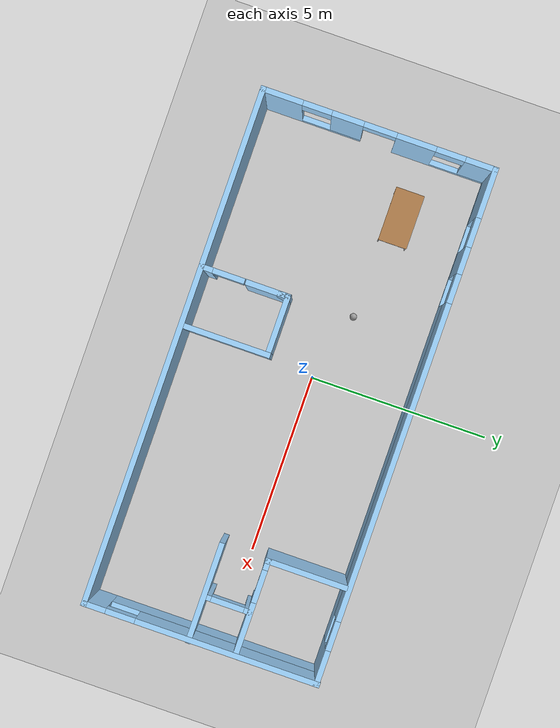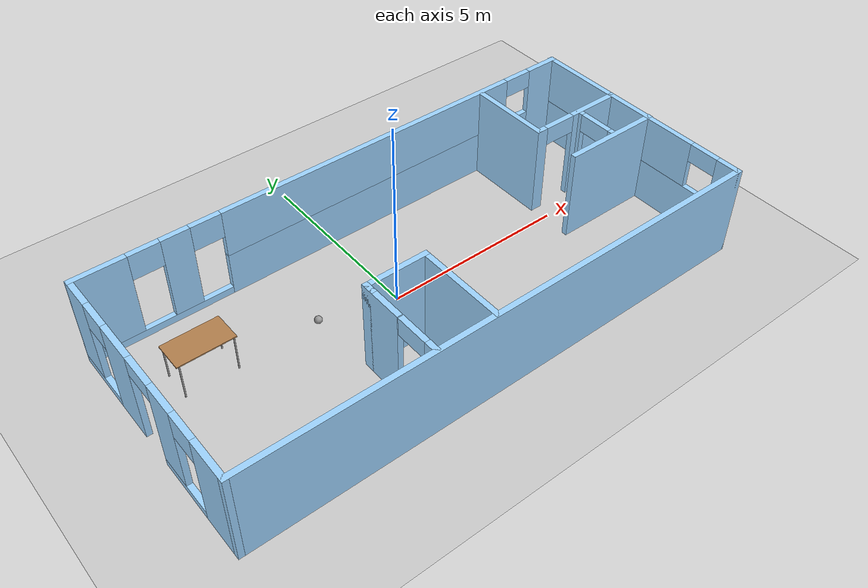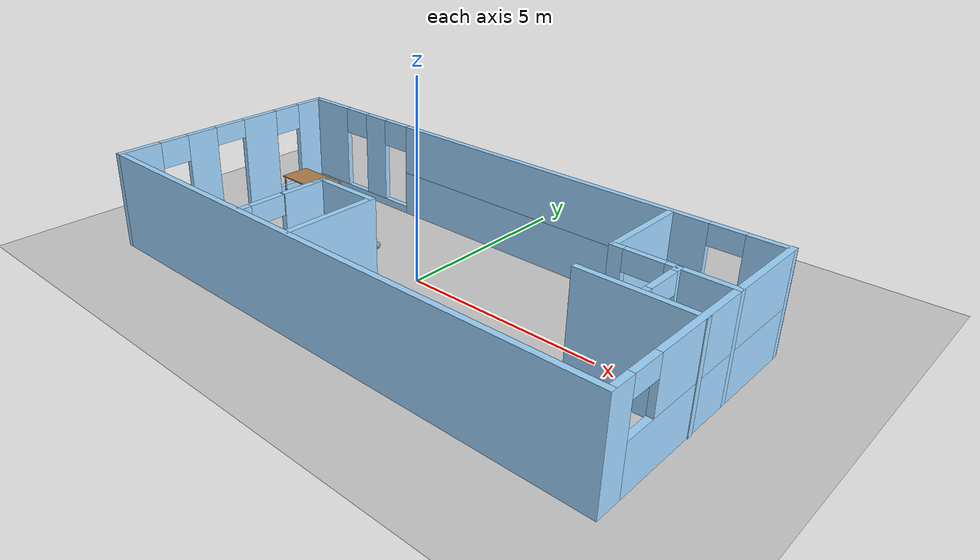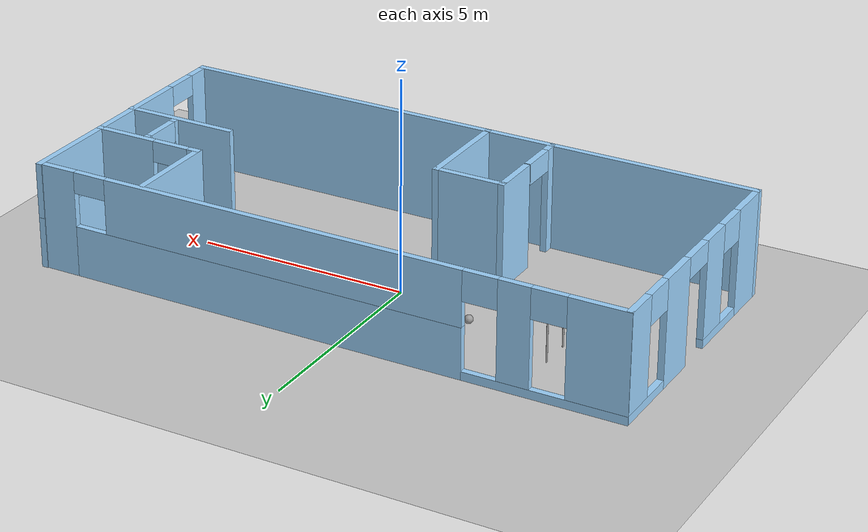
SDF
<sdf version="1.7">
 <world name="default">
  <plugin name="welcom_message" filename="libwelcome_message.so"/>
  <light name="sun" type="directional">
   <pose>0 0 10 0 -0 0</pose>
   <diffuse>0.8 0.8 0.8 1</diffuse>
   <specular>0.2 0.2 0.2 1</specular>
   <attenuation>
    <range>1000</range>
    <constant>0.9</constant>
    <linear>0.01</linear>
    <quadratic>0.001</quadratic>
   </attenuation>
   <direction>-0.5 0.1 -0.9</direction>
   <spot><inner_angle>0</inner_angle><outer_angle>0</outer_angle><falloff>0</falloff></spot>
  </light>
  <model name="ground_plane">
   <static>1</static>
   <link name="link">
    <collision name="collision">
     <geometry><plane><normal>0 0 1</normal><size>100 100</size></plane></geometry>
     <surface><friction><ode><mu>100</mu><mu2>50</mu2></ode></friction></surface>
    </collision>
    <visual name="visual">
     <cast_shadows>0</cast_shadows>
     <geometry><plane><normal>0 0 1</normal><size>100 100</size></plane></geometry>
     <material>
      <script><uri>file://media/materials/scripts/gazebo.material</uri><name>Gazebo/Grey</name></script>
     </material>
    </visual>
   </link>
  </model>
  <gravity>0 0 -9.8</gravity>
  <magnetic_field>6e-06 2.3e-05 -4.2e-05</magnetic_field>
  <atmosphere type="adiabatic"/>
  <physics name="default_physics" default="0" type="ode">
   <max_step_size>0.001</max_step_size>
   <real_time_factor>1</real_time_factor>
   <real_time_update_rate>1000</real_time_update_rate>
  </physics>
  <scene><ambient>0.4 0.4 0.4 1</ambient><background>0.7 0.7 0.7 1</background><shadows>1</shadows></scene>
  <spherical_coordinates>
   <surface_model>EARTH_WGS84</surface_model>
   <latitude_deg>0</latitude_deg>
   <longitude_deg>0</longitude_deg>
   <elevation>0</elevation>
   <heading_deg>0</heading_deg>
  </spherical_coordinates>
  <model name="building">
   <pose>0.434818 -0.46322 0 0 -0 0</pose>
   <link name="Wall_0">
    <collision name="Wall_0_Collision">
     <geometry><box><size>14.25 0.15 2.5</size></box></geometry>
     <pose>0 0 1.25 0 -0 0</pose>
    </collision>
    <visual name="Wall_0_Visual">
     <pose>0 0 1.25 0 -0 0</pose>
     <geometry><box><size>14.25 0.15 2.5</size></box></geometry>
     <material>
      <script><uri>file://media/materials/scripts/gazebo.material</uri><name>Gazebo/Grey</name></script>
      <ambient>0.619608 0.835294 1 1</ambient>
     </material>
     <meta><layer>0</layer></meta>
    </visual>
    <pose>-0.008965 -3.19511 0 0 -0 0</pose>
   </link>
   <link name="Wall_1">
    <pose>7.04104 0 0 0 -0 1.5708</pose>
    <visual name="Wall_1_Visual_0">
     <pose>-2.93794 0 1.25 0 -0 0</pose>
     <geometry><box><size>0.664339 0.15 2.5</size></box></geometry>
     <material>
      <script><uri>file://media/materials/scripts/gazebo.material</uri><name>Gazebo/Grey</name></script>
      <ambient>0.619608 0.835294 1 1</ambient>
     </material>
     <meta><layer>0</layer></meta>
    </visual>
    <collision name="Wall_1_Collision_0">
     <geometry><box><size>0.664339 0.15 2.5</size></box></geometry>
     <pose>-2.93794 0 1.25 0 -0 0</pose>
    </collision>
    <visual name="Wall_1_Visual_1">
     <pose>0.332169 0 0.6 0 -0 0</pose>
     <geometry><box><size>5.87589 0.15 1.2</size></box></geometry>
     <material>
      <script><uri>file://media/materials/scripts/gazebo.material</uri><name>Gazebo/Grey</name></script>
      <ambient>0.619608 0.835294 1 1</ambient>
     </material>
     <meta><layer>0</layer></meta>
    </visual>
    <collision name="Wall_1_Collision_1">
     <geometry><box><size>5.87589 0.15 1.2</size></box></geometry>
     <pose>0.332169 0 0.6 0 -0 0</pose>
    </collision>
    <visual name="Wall_1_Visual_2">
     <pose>0.732169 0 1.85 0 -0 0</pose>
     <geometry><box><size>5.07589 0.15 1.3</size></box></geometry>
     <material>
      <script><uri>file://media/materials/scripts/gazebo.material</uri><name>Gazebo/Grey</name></script>
      <ambient>0.619608 0.835294 1 1</ambient>
     </material>
     <meta><layer>0</layer></meta>
    </visual>
    <collision name="Wall_1_Collision_2">
     <geometry><box><size>5.07589 0.15 1.3</size></box></geometry>
     <pose>0.732169 0 1.85 0 -0 0</pose>
    </collision>
    <visual name="Wall_1_Visual_3">
     <pose>-2.20578 0 2.25 0 -0 0</pose>
     <geometry><box><size>0.8 0.15 0.5</size></box></geometry>
     <material>
      <script><uri>file://media/materials/scripts/gazebo.material</uri><name>Gazebo/Grey</name></script>
      <ambient>0.619608 0.835294 1 1</ambient>
     </material>
     <meta><layer>0</layer></meta>
    </visual>
    <collision name="Wall_1_Collision_3">
     <geometry><box><size>0.8 0.15 0.5</size></box></geometry>
     <pose>-2.20578 0 2.25 0 -0 0</pose>
    </collision>
   </link>
   <link name="Wall_12">
    <collision name="Wall_12_Collision">
     <geometry><box><size>2.5 0.15 2.5</size></box></geometry>
     <pose>0 0 1.25 0 -0 0</pose>
    </collision>
    <visual name="Wall_12_Visual">
     <pose>0 0 1.25 0 -0 0</pose>
     <geometry><box><size>2.5 0.15 2.5</size></box></geometry>
     <material>
      <script><uri>file://media/materials/scripts/gazebo.material</uri><name>Gazebo/Grey</name></script>
      <ambient>0.619608 0.835294 1 1</ambient>
     </material>
     <meta><layer>0</layer></meta>
    </visual>
    <pose>-0.594393 -1.99773 0 0 0 -1.5708</pose>
   </link>
   <link name="Wall_14">
    <collision name="Wall_14_Collision">
     <geometry><box><size>1.75 0.15 2.5</size></box></geometry>
     <pose>0 0 1.25 0 -0 0</pose>
    </collision>
    <visual name="Wall_14_Visual">
     <pose>0 0 1.25 0 -0 0</pose>
     <geometry><box><size>1.75 0.15 2.5</size></box></geometry>
     <material>
      <script><uri>file://media/materials/scripts/gazebo.material</uri><name>Gazebo/Grey</name></script>
      <ambient>0.619608 0.835294 1 1</ambient>
     </material>
     <meta><layer>0</layer></meta>
    </visual>
    <pose>-1.39439 -0.822733 0 0 -0 0</pose>
   </link>
   <link name="Wall_16">
    <collision name="Wall_16_Collision">
     <geometry><box><size>2.75 0.15 2.5</size></box></geometry>
     <pose>0 0 1.25 0 -0 0</pose>
    </collision>
    <visual name="Wall_16_Visual">
     <pose>0 0 1.25 0 -0 0</pose>
     <geometry><box><size>2.75 0.15 2.5</size></box></geometry>
     <material>
      <script><uri>file://media/materials/scripts/gazebo.material</uri><name>Gazebo/Grey</name></script>
      <ambient>0.619608 0.835294 1 1</ambient>
     </material>
     <meta><layer>0</layer></meta>
    </visual>
    <pose>5.75896 -0.327429 0 0 -0 3.14159</pose>
   </link>
   <link name="Wall_18">
    <pose>5.74148 0.949346 0 0 -0 3.14159</pose>
    <visual name="Wall_18_Visual_0">
     <pose>-0.610645 0 1.25 0 -0 0</pose>
     <geometry><box><size>1.52871 0.15 2.5</size></box></geometry>
     <material>
      <script><uri>file://media/materials/scripts/gazebo.material</uri><name>Gazebo/Grey</name></script>
      <ambient>0.619608 0.835294 1 1</ambient>
     </material>
     <meta><layer>0</layer></meta>
    </visual>
    <collision name="Wall_18_Collision_0">
     <geometry><box><size>1.52871 0.15 2.5</size></box></geometry>
     <pose>-0.610645 0 1.25 0 -0 0</pose>
    </collision>
    <visual name="Wall_18_Visual_1">
     <pose>1.21436 0 1.25 0 -0 0</pose>
     <geometry><box><size>0.321291 0.15 2.5</size></box></geometry>
     <material>
      <script><uri>file://media/materials/scripts/gazebo.material</uri><name>Gazebo/Grey</name></script>
      <ambient>0.619608 0.835294 1 1</ambient>
     </material>
     <meta><layer>0</layer></meta>
    </visual>
    <collision name="Wall_18_Collision_1">
     <geometry><box><size>0.321291 0.15 2.5</size></box></geometry>
     <pose>1.21436 0 1.25 0 -0 0</pose>
    </collision>
    <visual name="Wall_18_Visual_2">
     <pose>0.603709 0 2.25 0 -0 0</pose>
     <geometry><box><size>0.9 0.15 0.5</size></box></geometry>
     <material>
      <script><uri>file://media/materials/scripts/gazebo.material</uri><name>Gazebo/Grey</name></script>
      <ambient>0.619608 0.835294 1 1</ambient>
     </material>
     <meta><layer>0</layer></meta>
    </visual>
    <collision name="Wall_18_Collision_2">
     <geometry><box><size>0.9 0.15 0.5</size></box></geometry>
     <pose>0.603709 0 2.25 0 -0 0</pose>
    </collision>
   </link>
   <link name="Wall_19">
    <collision name="Wall_19_Collision">
     <geometry><box><size>2.25 0.15 2.5</size></box></geometry>
     <pose>0 0 1.25 0 -0 0</pose>
    </collision>
    <visual name="Wall_19_Visual">
     <pose>0 0 1.25 0 -0 0</pose>
     <geometry><box><size>2.25 0.15 2.5</size></box></geometry>
     <material>
      <script><uri>file://media/materials/scripts/gazebo.material</uri><name>Gazebo/Grey</name></script>
      <ambient>0.619608 0.835294 1 1</ambient>
     </material>
     <meta><layer>0</layer></meta>
    </visual>
    <pose>4.44147 1.99935 0 0 -0 1.5708</pose>
   </link>
   <link name="Wall_2">
    <pose>-0.008965 3.175 0 0 -0 3.14159</pose>
    <visual name="Wall_2_Visual_0">
     <pose>-6.63065 0 1.25 0 -0 0</pose>
     <geometry><box><size>0.988708 0.15 2.5</size></box></geometry>
     <material>
      <script><uri>file://media/materials/scripts/gazebo.material</uri><name>Gazebo/Grey</name></script>
      <ambient>0.619608 0.835294 1 1</ambient>
     </material>
     <meta><layer>0</layer></meta>
    </visual>
    <collision name="Wall_2_Collision_0">
     <geometry><box><size>0.988708 0.15 2.5</size></box></geometry>
     <pose>-6.63065 0 1.25 0 -0 0</pose>
    </collision>
    <visual name="Wall_2_Visual_1">
     <pose>-1.37352 0 0.6 0 -0 0</pose>
     <geometry><box><size>9.52555 0.15 1.2</size></box></geometry>
     <material>
      <script><uri>file://media/materials/scripts/gazebo.material</uri><name>Gazebo/Grey</name></script>
      <ambient>0.619608 0.835294 1 1</ambient>
     </material>
     <meta><layer>0</layer></meta>
    </visual>
    <collision name="Wall_2_Collision_1">
     <geometry><box><size>9.52555 0.15 1.2</size></box></geometry>
     <pose>-1.37352 0 0.6 0 -0 0</pose>
    </collision>
    <visual name="Wall_2_Visual_2">
     <pose>5.25713 0 0.1 0 -0 0</pose>
     <geometry><box><size>3.73574 0.15 0.2</size></box></geometry>
     <material>
      <script><uri>file://media/materials/scripts/gazebo.material</uri><name>Gazebo/Grey</name></script>
      <ambient>0.619608 0.835294 1 1</ambient>
     </material>
     <meta><layer>0</layer></meta>
    </visual>
    <collision name="Wall_2_Collision_2">
     <geometry><box><size>3.73574 0.15 0.2</size></box></geometry>
     <pose>5.25713 0 0.1 0 -0 0</pose>
    </collision>
    <visual name="Wall_2_Visual_3">
     <pose>4.55882 0 1.35 0 -0 0</pose>
     <geometry><box><size>0.739125 0.15 2.3</size></box></geometry>
     <material>
      <script><uri>file://media/materials/scripts/gazebo.material</uri><name>Gazebo/Grey</name></script>
      <ambient>0.619608 0.835294 1 1</ambient>
     </material>
     <meta><layer>0</layer></meta>
    </visual>
    <collision name="Wall_2_Collision_3">
     <geometry><box><size>0.739125 0.15 2.3</size></box></geometry>
     <pose>4.55882 0 1.35 0 -0 0</pose>
    </collision>
    <visual name="Wall_2_Visual_4">
     <pose>6.42669 0 1.35 0 -0 0</pose>
     <geometry><box><size>1.39662 0.15 2.3</size></box></geometry>
     <material>
      <script><uri>file://media/materials/scripts/gazebo.material</uri><name>Gazebo/Grey</name></script>
      <ambient>0.619608 0.835294 1 1</ambient>
     </material>
     <meta><layer>0</layer></meta>
    </visual>
    <collision name="Wall_2_Collision_4">
     <geometry><box><size>1.39662 0.15 2.3</size></box></geometry>
     <pose>6.42669 0 1.35 0 -0 0</pose>
    </collision>
    <visual name="Wall_2_Visual_5">
     <pose>-0.973517 0 1.85 0 -0 0</pose>
     <geometry><box><size>8.72555 0.15 1.3</size></box></geometry>
     <material>
      <script><uri>file://media/materials/scripts/gazebo.material</uri><name>Gazebo/Grey</name></script>
      <ambient>0.619608 0.835294 1 1</ambient>
     </material>
     <meta><layer>0</layer></meta>
    </visual>
    <collision name="Wall_2_Collision_5">
     <geometry><box><size>8.72555 0.15 1.3</size></box></geometry>
     <pose>-0.973517 0 1.85 0 -0 0</pose>
    </collision>
    <visual name="Wall_2_Visual_6">
     <pose>5.32838 0 2.15 0 -0 0</pose>
     <geometry><box><size>0.8 0.15 0.7</size></box></geometry>
     <material>
      <script><uri>file://media/materials/scripts/gazebo.material</uri><name>Gazebo/Grey</name></script>
      <ambient>0.619608 0.835294 1 1</ambient>
     </material>
     <meta><layer>0</layer></meta>
    </visual>
    <collision name="Wall_2_Collision_6">
     <geometry><box><size>0.8 0.15 0.7</size></box></geometry>
     <pose>5.32838 0 2.15 0 -0 0</pose>
    </collision>
    <visual name="Wall_2_Visual_7">
     <pose>3.78926 0 2.15 0 -0 0</pose>
     <geometry><box><size>0.8 0.15 0.7</size></box></geometry>
     <material>
      <script><uri>file://media/materials/scripts/gazebo.material</uri><name>Gazebo/Grey</name></script>
      <ambient>0.619608 0.835294 1 1</ambient>
     </material>
     <meta><layer>0</layer></meta>
    </visual>
    <collision name="Wall_2_Collision_7">
     <geometry><box><size>0.8 0.15 0.7</size></box></geometry>
     <pose>3.78926 0 2.15 0 -0 0</pose>
    </collision>
    <visual name="Wall_2_Visual_8">
     <pose>-5.73629 0 2.25 0 -0 0</pose>
     <geometry><box><size>0.8 0.15 0.5</size></box></geometry>
     <material>
      <script><uri>file://media/materials/scripts/gazebo.material</uri><name>Gazebo/Grey</name></script>
      <ambient>0.619608 0.835294 1 1</ambient>
     </material>
     <meta><layer>0</layer></meta>
    </visual>
    <collision name="Wall_2_Collision_8">
     <geometry><box><size>0.8 0.15 0.5</size></box></geometry>
     <pose>-5.73629 0 2.25 0 -0 0</pose>
    </collision>
   </link>
   <link name="Wall_21">
    <pose>5.85077 0.368934 0 0 0 -1.5708</pose>
    <visual name="Wall_21_Visual_0">
     <pose>-0.5135 0 1.25 0 -0 0</pose>
     <geometry><box><size>0.223 0.15 2.5</size></box></geometry>
     <material>
      <script><uri>file://media/materials/scripts/gazebo.material</uri><name>Gazebo/Grey</name></script>
      <ambient>0.619608 0.835294 1 1</ambient>
     </material>
     <meta><layer>0</layer></meta>
    </visual>
    <collision name="Wall_21_Collision_0">
     <geometry><box><size>0.223 0.15 2.5</size></box></geometry>
     <pose>-0.5135 0 1.25 0 -0 0</pose>
    </collision>
    <visual name="Wall_21_Visual_1">
     <pose>0.5615 0 1.25 0 -0 0</pose>
     <geometry><box><size>0.127 0.15 2.5</size></box></geometry>
     <material>
      <script><uri>file://media/materials/scripts/gazebo.material</uri><name>Gazebo/Grey</name></script>
      <ambient>0.619608 0.835294 1 1</ambient>
     </material>
     <meta><layer>0</layer></meta>
    </visual>
    <collision name="Wall_21_Collision_1">
     <geometry><box><size>0.127 0.15 2.5</size></box></geometry>
     <pose>0.5615 0 1.25 0 -0 0</pose>
    </collision>
    <visual name="Wall_21_Visual_2">
     <pose>0.048 0 2.25 0 -0 0</pose>
     <geometry><box><size>0.9 0.15 0.5</size></box></geometry>
     <material>
      <script><uri>file://media/materials/scripts/gazebo.material</uri><name>Gazebo/Grey</name></script>
      <ambient>0.619608 0.835294 1 1</ambient>
     </material>
     <meta><layer>0</layer></meta>
    </visual>
    <collision name="Wall_21_Collision_2">
     <geometry><box><size>0.9 0.15 0.5</size></box></geometry>
     <pose>0.048 0 2.25 0 -0 0</pose>
    </collision>
   </link>
   <link name="Wall_4">
    <pose>-7.05896 -0.020113 0 0 -0 1.5708</pose>
    <visual name="Wall_4_Visual_0">
     <pose>-2.66413 0 1.25 0 -0 0</pose>
     <geometry><box><size>1.17174 0.15 2.5</size></box></geometry>
     <material>
      <script><uri>file://media/materials/scripts/gazebo.material</uri><name>Gazebo/Grey</name></script>
      <ambient>0.619608 0.835294 1 1</ambient>
     </material>
     <meta><layer>0</layer></meta>
    </visual>
    <collision name="Wall_4_Collision_0">
     <geometry><box><size>1.17174 0.15 2.5</size></box></geometry>
     <pose>-2.66413 0 1.25 0 -0 0</pose>
    </collision>
    <visual name="Wall_4_Visual_1">
     <pose>1.0363 0 1.25 0 -0 0</pose>
     <geometry><box><size>1.08172 0.15 2.5</size></box></geometry>
     <material>
      <script><uri>file://media/materials/scripts/gazebo.material</uri><name>Gazebo/Grey</name></script>
      <ambient>0.619608 0.835294 1 1</ambient>
     </material>
     <meta><layer>0</layer></meta>
    </visual>
    <collision name="Wall_4_Collision_1">
     <geometry><box><size>1.08172 0.15 2.5</size></box></geometry>
     <pose>1.0363 0 1.25 0 -0 0</pose>
    </collision>
    <visual name="Wall_4_Visual_2">
     <pose>-1.24141 0 0.1 0 -0 0</pose>
     <geometry><box><size>1.6737 0.15 0.2</size></box></geometry>
     <material>
      <script><uri>file://media/materials/scripts/gazebo.material</uri><name>Gazebo/Grey</name></script>
      <ambient>0.619608 0.835294 1 1</ambient>
     </material>
     <meta><layer>0</layer></meta>
    </visual>
    <collision name="Wall_4_Collision_2">
     <geometry><box><size>1.6737 0.15 0.2</size></box></geometry>
     <pose>-1.24141 0 0.1 0 -0 0</pose>
    </collision>
    <visual name="Wall_4_Visual_3">
     <pose>2.41358 0 0.1 0 -0 0</pose>
     <geometry><box><size>1.67284 0.15 0.2</size></box></geometry>
     <material>
      <script><uri>file://media/materials/scripts/gazebo.material</uri><name>Gazebo/Grey</name></script>
      <ambient>0.619608 0.835294 1 1</ambient>
     </material>
     <meta><layer>0</layer></meta>
    </visual>
    <collision name="Wall_4_Collision_3">
     <geometry><box><size>1.67284 0.15 0.2</size></box></geometry>
     <pose>2.41358 0 0.1 0 -0 0</pose>
    </collision>
    <visual name="Wall_4_Visual_4">
     <pose>-0.841411 0 1.35 0 -0 0</pose>
     <geometry><box><size>0.873699 0.15 2.3</size></box></geometry>
     <material>
      <script><uri>file://media/materials/scripts/gazebo.material</uri><name>Gazebo/Grey</name></script>
      <ambient>0.619608 0.835294 1 1</ambient>
     </material>
     <meta><layer>0</layer></meta>
    </visual>
    <collision name="Wall_4_Collision_4">
     <geometry><box><size>0.873699 0.15 2.3</size></box></geometry>
     <pose>-0.841411 0 1.35 0 -0 0</pose>
    </collision>
    <visual name="Wall_4_Visual_5">
     <pose>-0.841411 0 1.35 0 -0 0</pose>
     <geometry><box><size>0.873699 0.15 2.3</size></box></geometry>
     <material>
      <script><uri>file://media/materials/scripts/gazebo.material</uri><name>Gazebo/Grey</name></script>
      <ambient>0.619608 0.835294 1 1</ambient>
     </material>
     <meta><layer>0</layer></meta>
    </visual>
    <collision name="Wall_4_Collision_5">
     <geometry><box><size>0.873699 0.15 2.3</size></box></geometry>
     <pose>-0.841411 0 1.35 0 -0 0</pose>
    </collision>
    <visual name="Wall_4_Visual_6">
     <pose>2.81358 0 1.35 0 -0 0</pose>
     <geometry><box><size>0.872837 0.15 2.3</size></box></geometry>
     <material>
      <script><uri>file://media/materials/scripts/gazebo.material</uri><name>Gazebo/Grey</name></script>
      <ambient>0.619608 0.835294 1 1</ambient>
     </material>
     <meta><layer>0</layer></meta>
    </visual>
    <collision name="Wall_4_Collision_6">
     <geometry><box><size>0.872837 0.15 2.3</size></box></geometry>
     <pose>2.81358 0 1.35 0 -0 0</pose>
    </collision>
    <visual name="Wall_4_Visual_7">
     <pose>-1.67826 0 2.15 0 -0 0</pose>
     <geometry><box><size>0.8 0.15 0.7</size></box></geometry>
     <material>
      <script><uri>file://media/materials/scripts/gazebo.material</uri><name>Gazebo/Grey</name></script>
      <ambient>0.619608 0.835294 1 1</ambient>
     </material>
     <meta><layer>0</layer></meta>
    </visual>
    <collision name="Wall_4_Collision_7">
     <geometry><box><size>0.8 0.15 0.7</size></box></geometry>
     <pose>-1.67826 0 2.15 0 -0 0</pose>
    </collision>
    <visual name="Wall_4_Visual_8">
     <pose>1.97716 0 2.15 0 -0 0</pose>
     <geometry><box><size>0.8 0.15 0.7</size></box></geometry>
     <material>
      <script><uri>file://media/materials/scripts/gazebo.material</uri><name>Gazebo/Grey</name></script>
      <ambient>0.619608 0.835294 1 1</ambient>
     </material>
     <meta><layer>0</layer></meta>
    </visual>
    <collision name="Wall_4_Collision_8">
     <geometry><box><size>0.8 0.15 0.7</size></box></geometry>
     <pose>1.97716 0 2.15 0 -0 0</pose>
    </collision>
    <visual name="Wall_4_Visual_9">
     <pose>0.045439 0 2.25 0 -0 0</pose>
     <geometry><box><size>0.9 0.15 0.5</size></box></geometry>
     <material>
      <script><uri>file://media/materials/scripts/gazebo.material</uri><name>Gazebo/Grey</name></script>
      <ambient>0.619608 0.835294 1 1</ambient>
     </material>
     <meta><layer>0</layer></meta>
    </visual>
    <collision name="Wall_4_Collision_9">
     <geometry><box><size>0.9 0.15 0.5</size></box></geometry>
     <pose>0.045439 0 2.25 0 -0 0</pose>
    </collision>
    <visual name="Wall_4_Visual_10">
     <pose>0.045439 0 2.25 0 -0 0</pose>
     <geometry><box><size>0.9 0.15 0.5</size></box></geometry>
     <material>
      <script><uri>file://media/materials/scripts/gazebo.material</uri><name>Gazebo/Grey</name></script>
      <ambient>0.619608 0.835294 1 1</ambient>
     </material>
     <meta><layer>0</layer></meta>
    </visual>
    <collision name="Wall_4_Collision_10">
     <geometry><box><size>0.9 0.15 0.5</size></box></geometry>
     <pose>0.045439 0 2.25 0 -0 0</pose>
    </collision>
   </link>
   <link name="Wall_6">
    <pose>-2.19439 -1.99773 0 0 -0 1.5708</pose>
    <visual name="Wall_6_Visual_0">
     <pose>-1.06633 0 1.25 0 -0 0</pose>
     <geometry><box><size>0.367339 0.15 2.5</size></box></geometry>
     <material>
      <script><uri>file://media/materials/scripts/gazebo.material</uri><name>Gazebo/Grey</name></script>
      <ambient>0.619608 0.835294 1 1</ambient>
     </material>
     <meta><layer>0</layer></meta>
    </visual>
    <collision name="Wall_6_Collision_0">
     <geometry><box><size>0.367339 0.15 2.5</size></box></geometry>
     <pose>-1.06633 0 1.25 0 -0 0</pose>
    </collision>
    <visual name="Wall_6_Visual_1">
     <pose>0.633669 0 1.25 0 -0 0</pose>
     <geometry><box><size>1.23266 0.15 2.5</size></box></geometry>
     <material>
      <script><uri>file://media/materials/scripts/gazebo.material</uri><name>Gazebo/Grey</name></script>
      <ambient>0.619608 0.835294 1 1</ambient>
     </material>
     <meta><layer>0</layer></meta>
    </visual>
    <collision name="Wall_6_Collision_1">
     <geometry><box><size>1.23266 0.15 2.5</size></box></geometry>
     <pose>0.633669 0 1.25 0 -0 0</pose>
    </collision>
    <visual name="Wall_6_Visual_2">
     <pose>1.07067 0 1.25 0 -0 0</pose>
     <geometry><box><size>0.358661 0.15 2.5</size></box></geometry>
     <material>
      <script><uri>file://media/materials/scripts/gazebo.material</uri><name>Gazebo/Grey</name></script>
      <ambient>0.619608 0.835294 1 1</ambient>
     </material>
     <meta><layer>0</layer></meta>
    </visual>
    <collision name="Wall_6_Collision_2">
     <geometry><box><size>0.358661 0.15 2.5</size></box></geometry>
     <pose>1.07067 0 1.25 0 -0 0</pose>
    </collision>
    <visual name="Wall_6_Visual_3">
     <pose>-0.445661 0 2.25 0 -0 0</pose>
     <geometry><box><size>0.874 0.15 0.5</size></box></geometry>
     <material>
      <script><uri>file://media/materials/scripts/gazebo.material</uri><name>Gazebo/Grey</name></script>
      <ambient>0.619608 0.835294 1 1</ambient>
     </material>
     <meta><layer>0</layer></meta>
    </visual>
    <collision name="Wall_6_Collision_3">
     <geometry><box><size>0.874 0.15 0.5</size></box></geometry>
     <pose>-0.445661 0 2.25 0 -0 0</pose>
    </collision>
   </link>
   <static>1</static>
  </model>
  <model name="table">
   <static>1</static>
   <link name="link">
    <collision name="surface">
     <pose>0 0 1 0 -0 0</pose>
     <geometry><box><size>1.5 0.8 0.03</size></box></geometry>
     <surface><friction><ode><mu>0.6</mu><mu2>0.6</mu2></ode></friction></surface>
    </collision>
    <visual name="visual1">
     <pose>0 0 1 0 -0 0</pose>
     <geometry><box><size>1.5 0.8 0.03</size></box></geometry>
     <material>
      <script><uri>file://media/materials/scripts/gazebo.material</uri><name>Gazebo/Wood</name></script>
     </material>
    </visual>
    <collision name="front_left_leg">
     <pose>0.68 0.38 0.5 0 -0 0</pose>
     <geometry><cylinder><radius>0.02</radius><length>1</length></cylinder></geometry>
    </collision>
    <visual name="front_left_leg">
     <pose>0.68 0.38 0.5 0 -0 0</pose>
     <geometry><cylinder><radius>0.02</radius><length>1</length></cylinder></geometry>
     <material>
      <script><uri>file://media/materials/scripts/gazebo.material</uri><name>Gazebo/Grey</name></script>
     </material>
    </visual>
    <collision name="front_right_leg">
     <pose>0.68 -0.38 0.5 0 -0 0</pose>
     <geometry><cylinder><radius>0.02</radius><length>1</length></cylinder></geometry>
    </collision>
    <visual name="front_right_leg">
     <pose>0.68 -0.38 0.5 0 -0 0</pose>
     <geometry><cylinder><radius>0.02</radius><length>1</length></cylinder></geometry>
     <material>
      <script><uri>file://media/materials/scripts/gazebo.material</uri><name>Gazebo/Grey</name></script>
     </material>
    </visual>
    <collision name="back_right_leg">
     <pose>-0.68 -0.38 0.5 0 -0 0</pose>
     <geometry><cylinder><radius>0.02</radius><length>1</length></cylinder></geometry>
    </collision>
    <visual name="back_right_leg">
     <pose>-0.68 -0.38 0.5 0 -0 0</pose>
     <geometry><cylinder><radius>0.02</radius><length>1</length></cylinder></geometry>
     <material>
      <script><uri>file://media/materials/scripts/gazebo.material</uri><name>Gazebo/Grey</name></script>
     </material>
    </visual>
    <collision name="back_left_leg">
     <pose>-0.68 0.38 0.5 0 -0 0</pose>
     <geometry><cylinder><radius>0.02</radius><length>1</length></cylinder></geometry>
    </collision>
    <visual name="back_left_leg">
     <pose>-0.68 0.38 0.5 0 -0 0</pose>
     <geometry><cylinder><radius>0.02</radius><length>1</length></cylinder></geometry>
     <material>
      <script><uri>file://media/materials/scripts/gazebo.material</uri><name>Gazebo/Grey</name></script>
     </material>
    </visual>
   </link>
   <pose>-4.82101 0.853337 0 0 -0 0</pose>
  </model>
  <model name="my_ball">
   <link name="link_8">
    <inertial>
     <mass>1</mass>
     <inertia><ixx>0.1</ixx><ixy>0</ixy><ixz>0</ixz><iyy>0.1</iyy><iyz>0</iyz><izz>0.1</izz></inertia>
    </inertial>
    <visual name="visual">
     <geometry><sphere><radius>0.1</radius></sphere></geometry>
     <material>
      <lighting>1</lighting>
      <script><uri>file://media/materials/scripts/gazebo.material</uri><name>Gazebo/Grey</name></script>
      <shader type="pixel"><normal_map>__default__</normal_map></shader>
      <ambient>1 1 1 1</ambient>
      <diffuse>1 1 1 1</diffuse>
      <specular>1 1 1 1</specular>
      <emissive>1 1 1 1</emissive>
     </material>
    </visual>
    <collision name="collision">
     <geometry><sphere><radius>0.1</radius></sphere></geometry>
     <surface>
      <friction>
       <ode><mu>1</mu><mu2>1</mu2><fdir1>0 0 0</fdir1><slip1>0</slip1><slip2>0</slip2></ode>
       <torsional>
        <coefficient>1</coefficient>
        <patch_radius>0</patch_radius>
        <surface_radius>0</surface_radius>
        <use_patch_radius>1</use_patch_radius>
        <ode><slip>0</slip></ode>
       </torsional>
      </friction>
      <bounce><restitution_coefficient>0</restitution_coefficient><threshold>1e+06</threshold></bounce>
      <contact>
       <collide_without_contact>0</collide_without_contact>
       <collide_without_contact_bitmask>1</collide_without_contact_bitmask>
       <collide_bitmask>1</collide_bitmask>
       <ode>
        <soft_cfm>0</soft_cfm>
        <soft_erp>0.2</soft_erp>
        <kp>1e+13</kp>
        <kd>1</kd>
        <max_vel>0.01</max_vel>
        <min_depth>0</min_depth>
       </ode>
       <bullet>
        <split_impulse>1</split_impulse>
        <split_impulse_penetration_threshold>-0.01</split_impulse_penetration_threshold>
        <soft_cfm>0</soft_cfm>
        <soft_erp>0.2</soft_erp>
        <kp>1e+13</kp>
        <kd>1</kd>
       </bullet>
      </contact>
     </surface>
    </collision>
   </link>
   <static>0</static>
   <pose>-1.94268 0.519764 0.1 0 -0 0</pose>
  </model>
 </world>
</sdf>
